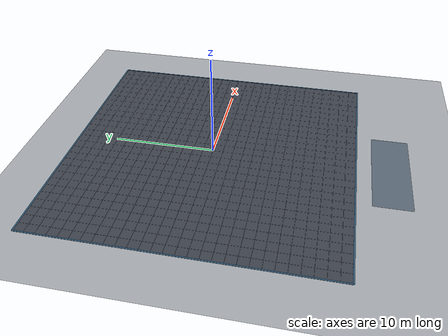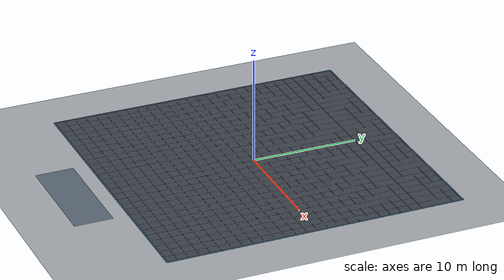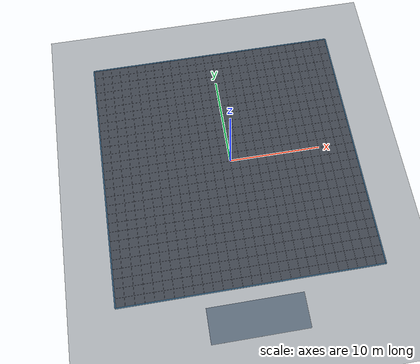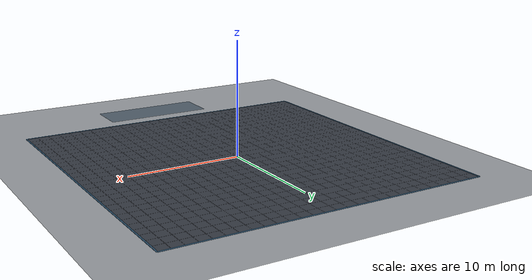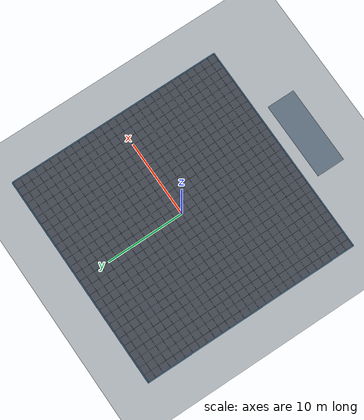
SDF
<?xml version="1.0" ?>
<sdf version="1.8">
  <world name="swarm_world">
    <!-- SPEEDUP SIMULATION: max_step_size=0.001 (1000Hz stable physics) & real_time_factor=1.0 -->
    <physics name="fast_physics" type="ode">
      <max_step_size>0.001</max_step_size>
      <real_time_factor>1.0</real_time_factor>
    </physics>

    <!-- SCENE CONFIG: Muted Architectural Lighting & Background -->
    <scene>
      <ambient>0.62 0.62 0.65 1.0</ambient>
      <background>0.78 0.80 0.83 1.0</background>
      <shadows>true</shadows>
      <grid>false</grid>
    </scene>

    <!-- PLUGIN INTI GAZEBO HARMONIC -->
    <plugin
      filename="gz-sim-physics-system"
      name="gz::sim::systems::Physics">
    </plugin>
    <plugin
      filename="gz-sim-user-commands-system"
      name="gz::sim::systems::UserCommands">
    </plugin>
    <plugin
      filename="gz-sim-scene-broadcaster-system"
      name="gz::sim::systems::SceneBroadcaster">
    </plugin>
    <plugin
      filename="gz-sim-sensors-system"
      name="gz::sim::systems::Sensors">
      <render_engine>ogre2</render_engine>
    </plugin>
    <plugin
      filename="gz-sim-wind-effects-system"
      name="gz::sim::systems::WindEffects">
      <force_approximation_scaling_factor>0.25</force_approximation_scaling_factor>
    </plugin>

    <!-- MATAHARI (SUN) - Soft Balanced Illumination -->
    <light type="directional" name="sun">
      <cast_shadows>true</cast_shadows>
      <pose>0 0 30 0 0 0</pose>
      <diffuse>0.85 0.85 0.87 1</diffuse>
      <specular>0.2 0.2 0.2 1</specular>
      <attenuation>
        <range>1000</range>
        <constant>0.9</constant>
        <linear>0.01</linear>
        <quadratic>0.001</quadratic>
      </attenuation>
      <direction>-0.4 0.2 -0.9</direction>
    </light>

    <!-- LANTAI LUAR (NEUTRAL MATTE CONCRETE EXTERIOR) -->
    <model name="ground_plane">
      <static>true</static>
      <link name="link">
        <collision name="collision">
          <geometry>
            <plane>
              <normal>0 0 1</normal>
              <size>100 100</size>
            </plane>
          </geometry>
        </collision>
        <visual name="visual">
          <geometry>
            <plane>
              <normal>0 0 1</normal>
              <size>100 100</size>
            </plane>
          </geometry>
          <material>
            <ambient>0.70 0.72 0.74 1.0</ambient>
            <diffuse>0.70 0.72 0.74 1.0</diffuse>
            <specular>0.1 0.1 0.1 1.0</specular>
          </material>
        </visual>
      </link>
    </model>

    <!-- GUI TOP-VIEW CAMERA PRESET -->
    <gui fullscreen="0">
      <camera name="user_camera">
        <pose>0.0 0.0 38.0 0.0 1.5708 1.5708</pose>
        <view_controller>orbit</view_controller>
      </camera>
    </gui>

    <!-- STAGING PAD AREA (LANDASAN AWAL 7 DRONE DI Y = -18m) -->
    <model name="staging_pad">
      <static>true</static>
      <link name="pad_link">
        <visual name="pad_v">
          <pose>0.0 -17.25 0.003 0 0 0</pose>
          <geometry><box><size>10.0 3.5 0.005</size></box></geometry>
          <material>
            <ambient>0.26 0.28 0.32 1.0</ambient>
            <diffuse>0.26 0.28 0.32 1.0</diffuse>
          </material>
        </visual>
        <visual name="pad_border">
          <pose>0.0 -17.25 0.005 0 0 0</pose>
          <geometry><box><size>10.1 3.6 0.003</size></box></geometry>
          <material>
            <ambient>0.38 0.44 0.50 1.0</ambient>
            <diffuse>0.38 0.44 0.50 1.0</diffuse>
          </material>
        </visual>
      </link>
    </model>
    <!-- VISUAL LANTAI ARENA & BORDER WILAYAH RECT                           -->
    <model name="visual_region_floor_rect">
      <static>true</static>
      <link name="floor_link">
        <visual name="floor_box_0">
          <pose>0.0000 0.0000 0.003 0 0 0</pose>
          <geometry><box><size>28.0000 28.0000 0.005</size></box></geometry>
          <material>
            <ambient>0.26 0.28 0.32 1.0</ambient>
            <diffuse>0.26 0.28 0.32 1.0</diffuse>
            <specular>0.15 0.15 0.15 1.0</specular>
          </material>
        </visual>
        <visual name="grid_v_0">
          <pose>-14.00 0.0000 0.005 0 0 0</pose>
          <geometry><box><size>0.025 28.0000 0.003</size></box></geometry>
          <material>
            <ambient>0.33 0.35 0.39 1.0</ambient>
            <diffuse>0.33 0.35 0.39 1.0</diffuse>
          </material>
        </visual>
        <visual name="grid_v_1">
          <pose>-13.00 0.0000 0.005 0 0 0</pose>
          <geometry><box><size>0.025 28.0000 0.003</size></box></geometry>
          <material>
            <ambient>0.33 0.35 0.39 1.0</ambient>
            <diffuse>0.33 0.35 0.39 1.0</diffuse>
          </material>
        </visual>
        <visual name="grid_v_2">
          <pose>-12.00 0.0000 0.005 0 0 0</pose>
          <geometry><box><size>0.025 28.0000 0.003</size></box></geometry>
          <material>
            <ambient>0.33 0.35 0.39 1.0</ambient>
            <diffuse>0.33 0.35 0.39 1.0</diffuse>
          </material>
        </visual>
        <visual name="grid_v_3">
          <pose>-11.00 0.0000 0.005 0 0 0</pose>
          <geometry><box><size>0.025 28.0000 0.003</size></box></geometry>
          <material>
            <ambient>0.33 0.35 0.39 1.0</ambient>
            <diffuse>0.33 0.35 0.39 1.0</diffuse>
          </material>
        </visual>
        <visual name="grid_v_4">
          <pose>-10.00 0.0000 0.005 0 0 0</pose>
          <geometry><box><size>0.025 28.0000 0.003</size></box></geometry>
          <material>
            <ambient>0.33 0.35 0.39 1.0</ambient>
            <diffuse>0.33 0.35 0.39 1.0</diffuse>
          </material>
        </visual>
        <visual name="grid_v_5">
          <pose>-9.00 0.0000 0.005 0 0 0</pose>
          <geometry><box><size>0.025 28.0000 0.003</size></box></geometry>
          <material>
            <ambient>0.33 0.35 0.39 1.0</ambient>
            <diffuse>0.33 0.35 0.39 1.0</diffuse>
          </material>
        </visual>
        <visual name="grid_v_6">
          <pose>-8.00 0.0000 0.005 0 0 0</pose>
          <geometry><box><size>0.025 28.0000 0.003</size></box></geometry>
          <material>
            <ambient>0.33 0.35 0.39 1.0</ambient>
            <diffuse>0.33 0.35 0.39 1.0</diffuse>
          </material>
        </visual>
        <visual name="grid_v_7">
          <pose>-7.00 0.0000 0.005 0 0 0</pose>
          <geometry><box><size>0.025 28.0000 0.003</size></box></geometry>
          <material>
            <ambient>0.33 0.35 0.39 1.0</ambient>
            <diffuse>0.33 0.35 0.39 1.0</diffuse>
          </material>
        </visual>
        <visual name="grid_v_8">
          <pose>-6.00 0.0000 0.005 0 0 0</pose>
          <geometry><box><size>0.025 28.0000 0.003</size></box></geometry>
          <material>
            <ambient>0.33 0.35 0.39 1.0</ambient>
            <diffuse>0.33 0.35 0.39 1.0</diffuse>
          </material>
        </visual>
        <visual name="grid_v_9">
          <pose>-5.00 0.0000 0.005 0 0 0</pose>
          <geometry><box><size>0.025 28.0000 0.003</size></box></geometry>
          <material>
            <ambient>0.33 0.35 0.39 1.0</ambient>
            <diffuse>0.33 0.35 0.39 1.0</diffuse>
          </material>
        </visual>
        <visual name="grid_v_10">
          <pose>-4.00 0.0000 0.005 0 0 0</pose>
          <geometry><box><size>0.025 28.0000 0.003</size></box></geometry>
          <material>
            <ambient>0.33 0.35 0.39 1.0</ambient>
            <diffuse>0.33 0.35 0.39 1.0</diffuse>
          </material>
        </visual>
        <visual name="grid_v_11">
          <pose>-3.00 0.0000 0.005 0 0 0</pose>
          <geometry><box><size>0.025 28.0000 0.003</size></box></geometry>
          <material>
            <ambient>0.33 0.35 0.39 1.0</ambient>
            <diffuse>0.33 0.35 0.39 1.0</diffuse>
          </material>
        </visual>
        <visual name="grid_v_12">
          <pose>-2.00 0.0000 0.005 0 0 0</pose>
          <geometry><box><size>0.025 28.0000 0.003</size></box></geometry>
          <material>
            <ambient>0.33 0.35 0.39 1.0</ambient>
            <diffuse>0.33 0.35 0.39 1.0</diffuse>
          </material>
        </visual>
        <visual name="grid_v_13">
          <pose>-1.00 0.0000 0.005 0 0 0</pose>
          <geometry><box><size>0.025 28.0000 0.003</size></box></geometry>
          <material>
            <ambient>0.33 0.35 0.39 1.0</ambient>
            <diffuse>0.33 0.35 0.39 1.0</diffuse>
          </material>
        </visual>
        <visual name="grid_v_14">
          <pose>0.00 0.0000 0.005 0 0 0</pose>
          <geometry><box><size>0.025 28.0000 0.003</size></box></geometry>
          <material>
            <ambient>0.33 0.35 0.39 1.0</ambient>
            <diffuse>0.33 0.35 0.39 1.0</diffuse>
          </material>
        </visual>
        <visual name="grid_v_15">
          <pose>1.00 0.0000 0.005 0 0 0</pose>
          <geometry><box><size>0.025 28.0000 0.003</size></box></geometry>
          <material>
            <ambient>0.33 0.35 0.39 1.0</ambient>
            <diffuse>0.33 0.35 0.39 1.0</diffuse>
          </material>
        </visual>
        <visual name="grid_v_16">
          <pose>2.00 0.0000 0.005 0 0 0</pose>
          <geometry><box><size>0.025 28.0000 0.003</size></box></geometry>
          <material>
            <ambient>0.33 0.35 0.39 1.0</ambient>
            <diffuse>0.33 0.35 0.39 1.0</diffuse>
          </material>
        </visual>
        <visual name="grid_v_17">
          <pose>3.00 0.0000 0.005 0 0 0</pose>
          <geometry><box><size>0.025 28.0000 0.003</size></box></geometry>
          <material>
            <ambient>0.33 0.35 0.39 1.0</ambient>
            <diffuse>0.33 0.35 0.39 1.0</diffuse>
          </material>
        </visual>
        <visual name="grid_v_18">
          <pose>4.00 0.0000 0.005 0 0 0</pose>
          <geometry><box><size>0.025 28.0000 0.003</size></box></geometry>
          <material>
            <ambient>0.33 0.35 0.39 1.0</ambient>
            <diffuse>0.33 0.35 0.39 1.0</diffuse>
          </material>
        </visual>
        <visual name="grid_v_19">
          <pose>5.00 0.0000 0.005 0 0 0</pose>
          <geometry><box><size>0.025 28.0000 0.003</size></box></geometry>
          <material>
            <ambient>0.33 0.35 0.39 1.0</ambient>
            <diffuse>0.33 0.35 0.39 1.0</diffuse>
          </material>
        </visual>
        <visual name="grid_v_20">
          <pose>6.00 0.0000 0.005 0 0 0</pose>
          <geometry><box><size>0.025 28.0000 0.003</size></box></geometry>
          <material>
            <ambient>0.33 0.35 0.39 1.0</ambient>
            <diffuse>0.33 0.35 0.39 1.0</diffuse>
          </material>
        </visual>
        <visual name="grid_v_21">
          <pose>7.00 0.0000 0.005 0 0 0</pose>
          <geometry><box><size>0.025 28.0000 0.003</size></box></geometry>
          <material>
            <ambient>0.33 0.35 0.39 1.0</ambient>
            <diffuse>0.33 0.35 0.39 1.0</diffuse>
          </material>
        </visual>
        <visual name="grid_v_22">
          <pose>8.00 0.0000 0.005 0 0 0</pose>
          <geometry><box><size>0.025 28.0000 0.003</size></box></geometry>
          <material>
            <ambient>0.33 0.35 0.39 1.0</ambient>
            <diffuse>0.33 0.35 0.39 1.0</diffuse>
          </material>
        </visual>
        <visual name="grid_v_23">
          <pose>9.00 0.0000 0.005 0 0 0</pose>
          <geometry><box><size>0.025 28.0000 0.003</size></box></geometry>
          <material>
            <ambient>0.33 0.35 0.39 1.0</ambient>
            <diffuse>0.33 0.35 0.39 1.0</diffuse>
          </material>
        </visual>
        <visual name="grid_v_24">
          <pose>10.00 0.0000 0.005 0 0 0</pose>
          <geometry><box><size>0.025 28.0000 0.003</size></box></geometry>
          <material>
            <ambient>0.33 0.35 0.39 1.0</ambient>
            <diffuse>0.33 0.35 0.39 1.0</diffuse>
          </material>
        </visual>
        <visual name="grid_v_25">
          <pose>11.00 0.0000 0.005 0 0 0</pose>
          <geometry><box><size>0.025 28.0000 0.003</size></box></geometry>
          <material>
            <ambient>0.33 0.35 0.39 1.0</ambient>
            <diffuse>0.33 0.35 0.39 1.0</diffuse>
          </material>
        </visual>
        <visual name="grid_v_26">
          <pose>12.00 0.0000 0.005 0 0 0</pose>
          <geometry><box><size>0.025 28.0000 0.003</size></box></geometry>
          <material>
            <ambient>0.33 0.35 0.39 1.0</ambient>
            <diffuse>0.33 0.35 0.39 1.0</diffuse>
          </material>
        </visual>
        <visual name="grid_v_27">
          <pose>13.00 0.0000 0.005 0 0 0</pose>
          <geometry><box><size>0.025 28.0000 0.003</size></box></geometry>
          <material>
            <ambient>0.33 0.35 0.39 1.0</ambient>
            <diffuse>0.33 0.35 0.39 1.0</diffuse>
          </material>
        </visual>
        <visual name="grid_v_28">
          <pose>14.00 0.0000 0.005 0 0 0</pose>
          <geometry><box><size>0.025 28.0000 0.003</size></box></geometry>
          <material>
            <ambient>0.33 0.35 0.39 1.0</ambient>
            <diffuse>0.33 0.35 0.39 1.0</diffuse>
          </material>
        </visual>
        <visual name="grid_h_29">
          <pose>0.0000 -14.00 0.005 0 0 0</pose>
          <geometry><box><size>28.0000 0.025 0.003</size></box></geometry>
          <material>
            <ambient>0.33 0.35 0.39 1.0</ambient>
            <diffuse>0.33 0.35 0.39 1.0</diffuse>
          </material>
        </visual>
        <visual name="grid_h_30">
          <pose>0.0000 -13.00 0.005 0 0 0</pose>
          <geometry><box><size>28.0000 0.025 0.003</size></box></geometry>
          <material>
            <ambient>0.33 0.35 0.39 1.0</ambient>
            <diffuse>0.33 0.35 0.39 1.0</diffuse>
          </material>
        </visual>
        <visual name="grid_h_31">
          <pose>0.0000 -12.00 0.005 0 0 0</pose>
          <geometry><box><size>28.0000 0.025 0.003</size></box></geometry>
          <material>
            <ambient>0.33 0.35 0.39 1.0</ambient>
            <diffuse>0.33 0.35 0.39 1.0</diffuse>
          </material>
        </visual>
        <visual name="grid_h_32">
          <pose>0.0000 -11.00 0.005 0 0 0</pose>
          <geometry><box><size>28.0000 0.025 0.003</size></box></geometry>
          <material>
            <ambient>0.33 0.35 0.39 1.0</ambient>
            <diffuse>0.33 0.35 0.39 1.0</diffuse>
          </material>
        </visual>
        <visual name="grid_h_33">
          <pose>0.0000 -10.00 0.005 0 0 0</pose>
          <geometry><box><size>28.0000 0.025 0.003</size></box></geometry>
          <material>
            <ambient>0.33 0.35 0.39 1.0</ambient>
            <diffuse>0.33 0.35 0.39 1.0</diffuse>
          </material>
        </visual>
        <visual name="grid_h_34">
          <pose>0.0000 -9.00 0.005 0 0 0</pose>
          <geometry><box><size>28.0000 0.025 0.003</size></box></geometry>
          <material>
            <ambient>0.33 0.35 0.39 1.0</ambient>
            <diffuse>0.33 0.35 0.39 1.0</diffuse>
          </material>
        </visual>
        <visual name="grid_h_35">
          <pose>0.0000 -8.00 0.005 0 0 0</pose>
          <geometry><box><size>28.0000 0.025 0.003</size></box></geometry>
          <material>
            <ambient>0.33 0.35 0.39 1.0</ambient>
            <diffuse>0.33 0.35 0.39 1.0</diffuse>
          </material>
        </visual>
        <visual name="grid_h_36">
          <pose>0.0000 -7.00 0.005 0 0 0</pose>
          <geometry><box><size>28.0000 0.025 0.003</size></box></geometry>
          <material>
            <ambient>0.33 0.35 0.39 1.0</ambient>
            <diffuse>0.33 0.35 0.39 1.0</diffuse>
          </material>
        </visual>
        <visual name="grid_h_37">
          <pose>0.0000 -6.00 0.005 0 0 0</pose>
          <geometry><box><size>28.0000 0.025 0.003</size></box></geometry>
          <material>
            <ambient>0.33 0.35 0.39 1.0</ambient>
            <diffuse>0.33 0.35 0.39 1.0</diffuse>
          </material>
        </visual>
        <visual name="grid_h_38">
          <pose>0.0000 -5.00 0.005 0 0 0</pose>
          <geometry><box><size>28.0000 0.025 0.003</size></box></geometry>
          <material>
            <ambient>0.33 0.35 0.39 1.0</ambient>
            <diffuse>0.33 0.35 0.39 1.0</diffuse>
          </material>
        </visual>
        <visual name="grid_h_39">
          <pose>0.0000 -4.00 0.005 0 0 0</pose>
          <geometry><box><size>28.0000 0.025 0.003</size></box></geometry>
          <material>
            <ambient>0.33 0.35 0.39 1.0</ambient>
            <diffuse>0.33 0.35 0.39 1.0</diffuse>
          </material>
        </visual>
        <visual name="grid_h_40">
          <pose>0.0000 -3.00 0.005 0 0 0</pose>
          <geometry><box><size>28.0000 0.025 0.003</size></box></geometry>
          <material>
            <ambient>0.33 0.35 0.39 1.0</ambient>
            <diffuse>0.33 0.35 0.39 1.0</diffuse>
          </material>
        </visual>
        <visual name="grid_h_41">
          <pose>0.0000 -2.00 0.005 0 0 0</pose>
          <geometry><box><size>28.0000 0.025 0.003</size></box></geometry>
          <material>
            <ambient>0.33 0.35 0.39 1.0</ambient>
            <diffuse>0.33 0.35 0.39 1.0</diffuse>
          </material>
        </visual>
        <visual name="grid_h_42">
          <pose>0.0000 -1.00 0.005 0 0 0</pose>
          <geometry><box><size>28.0000 0.025 0.003</size></box></geometry>
          <material>
            <ambient>0.33 0.35 0.39 1.0</ambient>
            <diffuse>0.33 0.35 0.39 1.0</diffuse>
          </material>
        </visual>
        <visual name="grid_h_43">
          <pose>0.0000 0.00 0.005 0 0 0</pose>
          <geometry><box><size>28.0000 0.025 0.003</size></box></geometry>
          <material>
            <ambient>0.33 0.35 0.39 1.0</ambient>
            <diffuse>0.33 0.35 0.39 1.0</diffuse>
          </material>
        </visual>
        <visual name="grid_h_44">
          <pose>0.0000 1.00 0.005 0 0 0</pose>
          <geometry><box><size>28.0000 0.025 0.003</size></box></geometry>
          <material>
            <ambient>0.33 0.35 0.39 1.0</ambient>
            <diffuse>0.33 0.35 0.39 1.0</diffuse>
          </material>
        </visual>
        <visual name="grid_h_45">
          <pose>0.0000 2.00 0.005 0 0 0</pose>
          <geometry><box><size>28.0000 0.025 0.003</size></box></geometry>
          <material>
            <ambient>0.33 0.35 0.39 1.0</ambient>
            <diffuse>0.33 0.35 0.39 1.0</diffuse>
          </material>
        </visual>
        <visual name="grid_h_46">
          <pose>0.0000 3.00 0.005 0 0 0</pose>
          <geometry><box><size>28.0000 0.025 0.003</size></box></geometry>
          <material>
            <ambient>0.33 0.35 0.39 1.0</ambient>
            <diffuse>0.33 0.35 0.39 1.0</diffuse>
          </material>
        </visual>
        <visual name="grid_h_47">
          <pose>0.0000 4.00 0.005 0 0 0</pose>
          <geometry><box><size>28.0000 0.025 0.003</size></box></geometry>
          <material>
            <ambient>0.33 0.35 0.39 1.0</ambient>
            <diffuse>0.33 0.35 0.39 1.0</diffuse>
          </material>
        </visual>
        <visual name="grid_h_48">
          <pose>0.0000 5.00 0.005 0 0 0</pose>
          <geometry><box><size>28.0000 0.025 0.003</size></box></geometry>
          <material>
            <ambient>0.33 0.35 0.39 1.0</ambient>
            <diffuse>0.33 0.35 0.39 1.0</diffuse>
          </material>
        </visual>
        <visual name="grid_h_49">
          <pose>0.0000 6.00 0.005 0 0 0</pose>
          <geometry><box><size>28.0000 0.025 0.003</size></box></geometry>
          <material>
            <ambient>0.33 0.35 0.39 1.0</ambient>
            <diffuse>0.33 0.35 0.39 1.0</diffuse>
          </material>
        </visual>
        <visual name="grid_h_50">
          <pose>0.0000 7.00 0.005 0 0 0</pose>
          <geometry><box><size>28.0000 0.025 0.003</size></box></geometry>
          <material>
            <ambient>0.33 0.35 0.39 1.0</ambient>
            <diffuse>0.33 0.35 0.39 1.0</diffuse>
          </material>
        </visual>
        <visual name="grid_h_51">
          <pose>0.0000 8.00 0.005 0 0 0</pose>
          <geometry><box><size>28.0000 0.025 0.003</size></box></geometry>
          <material>
            <ambient>0.33 0.35 0.39 1.0</ambient>
            <diffuse>0.33 0.35 0.39 1.0</diffuse>
          </material>
        </visual>
        <visual name="grid_h_52">
          <pose>0.0000 9.00 0.005 0 0 0</pose>
          <geometry><box><size>28.0000 0.025 0.003</size></box></geometry>
          <material>
            <ambient>0.33 0.35 0.39 1.0</ambient>
            <diffuse>0.33 0.35 0.39 1.0</diffuse>
          </material>
        </visual>
        <visual name="grid_h_53">
          <pose>0.0000 10.00 0.005 0 0 0</pose>
          <geometry><box><size>28.0000 0.025 0.003</size></box></geometry>
          <material>
            <ambient>0.33 0.35 0.39 1.0</ambient>
            <diffuse>0.33 0.35 0.39 1.0</diffuse>
          </material>
        </visual>
        <visual name="grid_h_54">
          <pose>0.0000 11.00 0.005 0 0 0</pose>
          <geometry><box><size>28.0000 0.025 0.003</size></box></geometry>
          <material>
            <ambient>0.33 0.35 0.39 1.0</ambient>
            <diffuse>0.33 0.35 0.39 1.0</diffuse>
          </material>
        </visual>
        <visual name="grid_h_55">
          <pose>0.0000 12.00 0.005 0 0 0</pose>
          <geometry><box><size>28.0000 0.025 0.003</size></box></geometry>
          <material>
            <ambient>0.33 0.35 0.39 1.0</ambient>
            <diffuse>0.33 0.35 0.39 1.0</diffuse>
          </material>
        </visual>
        <visual name="grid_h_56">
          <pose>0.0000 13.00 0.005 0 0 0</pose>
          <geometry><box><size>28.0000 0.025 0.003</size></box></geometry>
          <material>
            <ambient>0.33 0.35 0.39 1.0</ambient>
            <diffuse>0.33 0.35 0.39 1.0</diffuse>
          </material>
        </visual>
        <visual name="grid_h_57">
          <pose>0.0000 14.00 0.005 0 0 0</pose>
          <geometry><box><size>28.0000 0.025 0.003</size></box></geometry>
          <material>
            <ambient>0.33 0.35 0.39 1.0</ambient>
            <diffuse>0.33 0.35 0.39 1.0</diffuse>
          </material>
        </visual>
      </link>
    </model>

    <!-- BORDER PEMBATAS KELILING (MUTED STEEL BLUE / SLATE CURB) -->
    <model name="region_perimeter_border_rect">
      <static>true</static>
      <link name="border_link">
        <visual name="border_edge_0">
          <pose>0.0000 -14.0000 0.015 0 0 0.0000</pose>
          <geometry><box><size>28.0000 0.14 0.025</size></box></geometry>
          <material>
            <ambient>0.20 0.36 0.48 1.0</ambient>
            <diffuse>0.20 0.36 0.48 1.0</diffuse>
            <specular>0.25 0.25 0.25 1.0</specular>
          </material>
        </visual>
        <visual name="border_edge_1">
          <pose>14.0000 0.0000 0.015 0 0 1.5708</pose>
          <geometry><box><size>28.0000 0.14 0.025</size></box></geometry>
          <material>
            <ambient>0.20 0.36 0.48 1.0</ambient>
            <diffuse>0.20 0.36 0.48 1.0</diffuse>
            <specular>0.25 0.25 0.25 1.0</specular>
          </material>
        </visual>
        <visual name="border_edge_2">
          <pose>0.0000 14.0000 0.015 0 0 3.1416</pose>
          <geometry><box><size>28.0000 0.14 0.025</size></box></geometry>
          <material>
            <ambient>0.20 0.36 0.48 1.0</ambient>
            <diffuse>0.20 0.36 0.48 1.0</diffuse>
            <specular>0.25 0.25 0.25 1.0</specular>
          </material>
        </visual>
        <visual name="border_edge_3">
          <pose>-14.0000 0.0000 0.015 0 0 -1.5708</pose>
          <geometry><box><size>28.0000 0.14 0.025</size></box></geometry>
          <material>
            <ambient>0.20 0.36 0.48 1.0</ambient>
            <diffuse>0.20 0.36 0.48 1.0</diffuse>
            <specular>0.25 0.25 0.25 1.0</specular>
          </material>
        </visual>
      </link>
    </model>
  </world>
</sdf>
